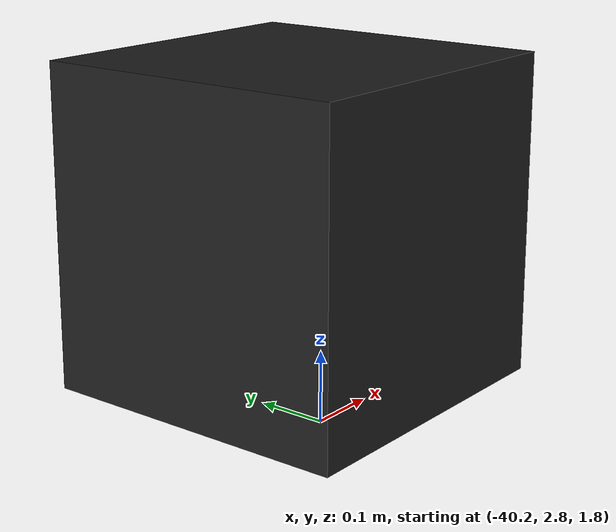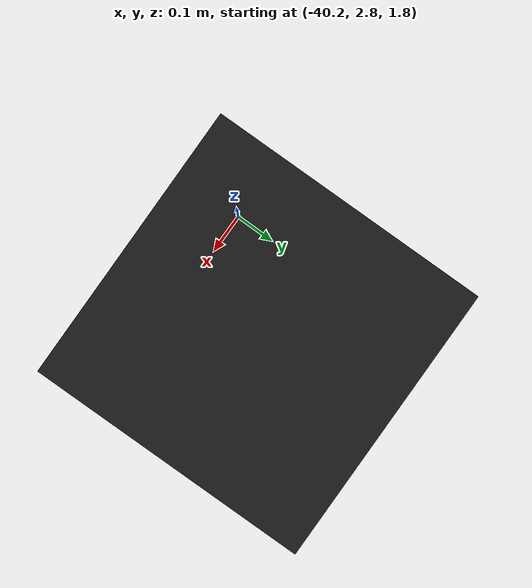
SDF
<?xml version="1.0" ?>
<sdf version="1.5">
  <world name="default">
    <!-- A global light source -->
    <include>
      <uri>model://sun</uri>
    </include>
    <!-- A ground plane -->
    <include>
      <uri>model://ground_plane</uri>
    </include>

    <!-- Only one ROS interface plugin is required per world, as any other plugin can connect a Gazebo
         topic to a ROS topic (or vise versa). -->
    <plugin name="ros_interface_plugin" filename="librotors_gazebo_ros_interface_plugin.so"/>

    <physics name='default_physics' default='0' type='ode'>
      <gravity>0 0 -9.8066</gravity>
      <ode>
        <solver>
          <type>quick</type>
          <iters>10</iters>
          <sor>1.3</sor>
          <use_dynamic_moi_rescaling>0</use_dynamic_moi_rescaling>
        </solver>
        <constraints>
          <cfm>0</cfm>
          <erp>0.2</erp>
          <contact_max_correcting_vel>100</contact_max_correcting_vel>
          <contact_surface_layer>0.001</contact_surface_layer>
        </constraints>
      </ode>
      <max_step_size>0.002</max_step_size>
      <real_time_factor>1</real_time_factor>
      <real_time_update_rate>500</real_time_update_rate>
      <magnetic_field>6e-06 2.3e-05 -4.2e-05</magnetic_field>
    </physics>

    <model name="target">
      <pose>-40 3 2 0 0 0</pose>
      <link name="link">
        <collision name="collision">
          <geometry>
            <box>
              <size>0.5 0.5 0.5</size>
            </box>
          </geometry>
        </collision>
        <visual name="visual">
          <geometry>
            <box>
              <size>0.5 0.5 0.5</size>
            </box>
          </geometry>
          <material>
            <script>
              <name>Gazebo/Black </name>
            </script>
          </material>
        </visual>
      </link>
    </model>

  </world>
</sdf>
